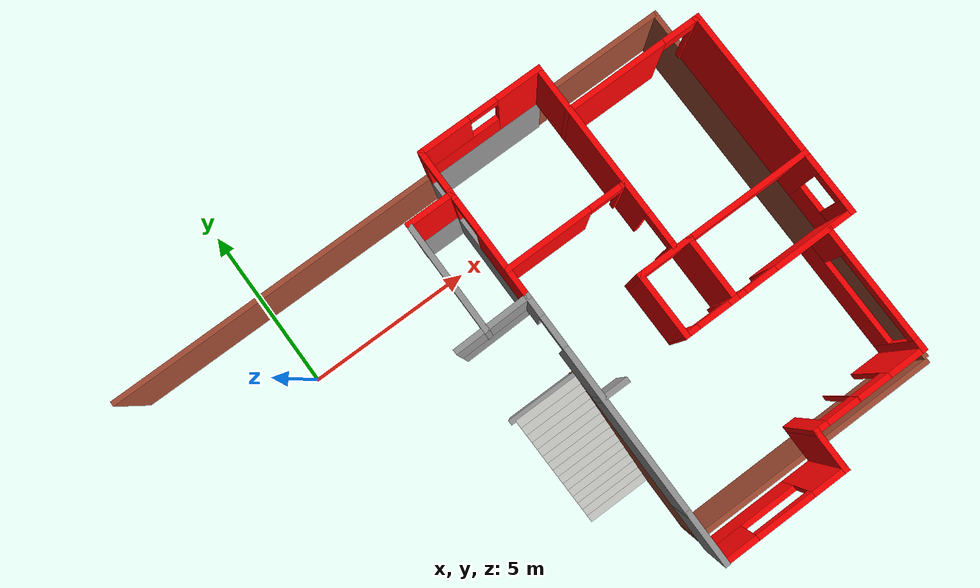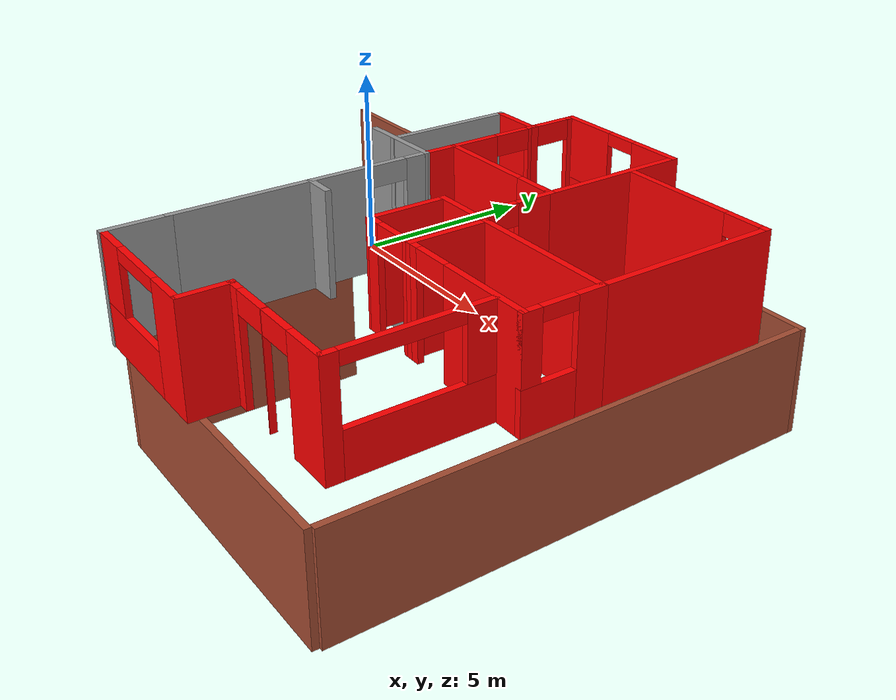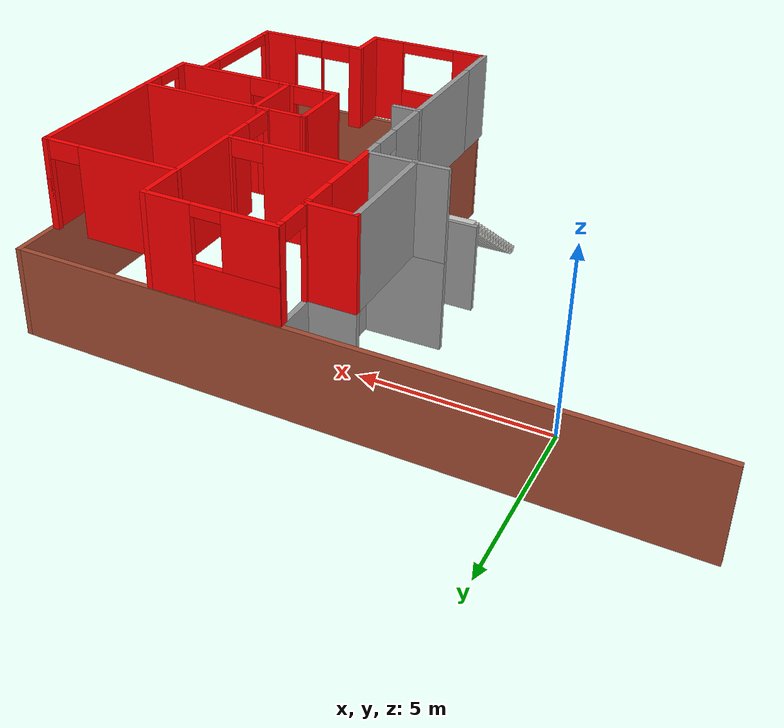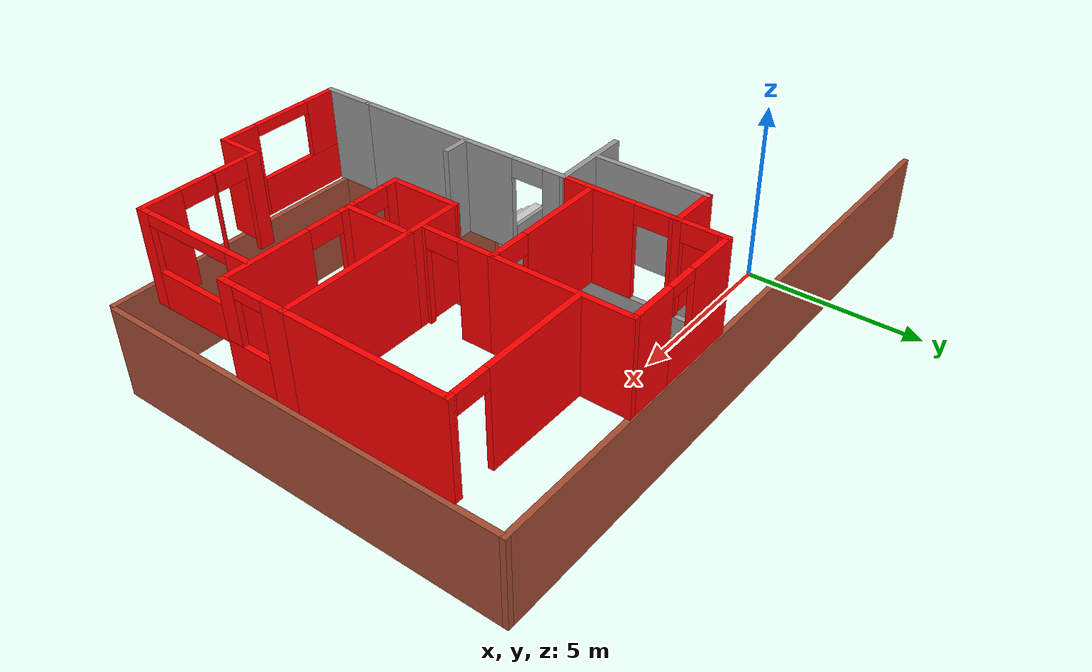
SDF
<sdf version="1.6">
 <model name="2floorHouse">
  <pose>4.58179 -3.588 0 0 -0 0</pose>
  <link name="Stairs_0">
   <visual name="Stairs_0_Visual_0">
    <pose>0.240398 -3.9612 0.083333 0 -0 -3.14159</pose>
    <geometry><box><size>1.92575 0.233333 0.166667</size></box></geometry>
    <material>
     <script><uri>file://media/materials/scripts/gazebo.material</uri><name>Gazebo/CeilingTiled</name></script>
     <ambient>0 0 0 1</ambient>
    </material>
   </visual>
   <collision name="Stairs_0_Collision_0">
    <geometry><box><size>1.92575 0.233333 0.166667</size></box></geometry>
    <pose>0.240398 -3.9612 0.083333 0 -0 -3.14159</pose>
   </collision>
   <visual name="Stairs_0_Visual_1">
    <pose>0.240398 -3.72787 0.25 0 -0 -3.14159</pose>
    <geometry><box><size>1.92575 0.233333 0.166667</size></box></geometry>
    <material>
     <script><uri>file://media/materials/scripts/gazebo.material</uri><name>Gazebo/CeilingTiled</name></script>
     <ambient>0 0 0 1</ambient>
    </material>
   </visual>
   <collision name="Stairs_0_Collision_1">
    <geometry><box><size>1.92575 0.233333 0.166667</size></box></geometry>
    <pose>0.240398 -3.72787 0.25 0 -0 -3.14159</pose>
   </collision>
   <visual name="Stairs_0_Visual_2">
    <pose>0.240398 -3.49454 0.416667 0 -0 -3.14159</pose>
    <geometry><box><size>1.92575 0.233333 0.166667</size></box></geometry>
    <material>
     <script><uri>file://media/materials/scripts/gazebo.material</uri><name>Gazebo/CeilingTiled</name></script>
     <ambient>0 0 0 1</ambient>
    </material>
   </visual>
   <collision name="Stairs_0_Collision_2">
    <geometry><box><size>1.92575 0.233333 0.166667</size></box></geometry>
    <pose>0.240398 -3.49454 0.416667 0 -0 -3.14159</pose>
   </collision>
   <visual name="Stairs_0_Visual_3">
    <pose>0.240398 -3.2612 0.583333 0 -0 -3.14159</pose>
    <geometry><box><size>1.92575 0.233333 0.166667</size></box></geometry>
    <material>
     <script><uri>file://media/materials/scripts/gazebo.material</uri><name>Gazebo/CeilingTiled</name></script>
     <ambient>0 0 0 1</ambient>
    </material>
   </visual>
   <collision name="Stairs_0_Collision_3">
    <geometry><box><size>1.92575 0.233333 0.166667</size></box></geometry>
    <pose>0.240398 -3.2612 0.583333 0 -0 -3.14159</pose>
   </collision>
   <visual name="Stairs_0_Visual_4">
    <pose>0.240398 -3.02787 0.75 0 -0 -3.14159</pose>
    <geometry><box><size>1.92575 0.233333 0.166667</size></box></geometry>
    <material>
     <script><uri>file://media/materials/scripts/gazebo.material</uri><name>Gazebo/CeilingTiled</name></script>
     <ambient>0 0 0 1</ambient>
    </material>
   </visual>
   <collision name="Stairs_0_Collision_4">
    <geometry><box><size>1.92575 0.233333 0.166667</size></box></geometry>
    <pose>0.240398 -3.02787 0.75 0 -0 -3.14159</pose>
   </collision>
   <visual name="Stairs_0_Visual_5">
    <pose>0.240398 -2.79454 0.916667 0 -0 -3.14159</pose>
    <geometry><box><size>1.92575 0.233333 0.166667</size></box></geometry>
    <material>
     <script><uri>file://media/materials/scripts/gazebo.material</uri><name>Gazebo/CeilingTiled</name></script>
     <ambient>0 0 0 1</ambient>
    </material>
   </visual>
   <collision name="Stairs_0_Collision_5">
    <geometry><box><size>1.92575 0.233333 0.166667</size></box></geometry>
    <pose>0.240398 -2.79454 0.916667 0 -0 -3.14159</pose>
   </collision>
   <visual name="Stairs_0_Visual_6">
    <pose>0.240398 -2.5612 1.08333 0 -0 -3.14159</pose>
    <geometry><box><size>1.92575 0.233333 0.166667</size></box></geometry>
    <material>
     <script><uri>file://media/materials/scripts/gazebo.material</uri><name>Gazebo/CeilingTiled</name></script>
     <ambient>0 0 0 1</ambient>
    </material>
   </visual>
   <collision name="Stairs_0_Collision_6">
    <geometry><box><size>1.92575 0.233333 0.166667</size></box></geometry>
    <pose>0.240398 -2.5612 1.08333 0 -0 -3.14159</pose>
   </collision>
   <visual name="Stairs_0_Visual_7">
    <pose>0.240398 -2.32787 1.25 0 -0 -3.14159</pose>
    <geometry><box><size>1.92575 0.233333 0.166667</size></box></geometry>
    <material>
     <script><uri>file://media/materials/scripts/gazebo.material</uri><name>Gazebo/CeilingTiled</name></script>
     <ambient>0 0 0 1</ambient>
    </material>
   </visual>
   <collision name="Stairs_0_Collision_7">
    <geometry><box><size>1.92575 0.233333 0.166667</size></box></geometry>
    <pose>0.240398 -2.32787 1.25 0 -0 -3.14159</pose>
   </collision>
   <visual name="Stairs_0_Visual_8">
    <pose>0.240398 -2.09454 1.41667 0 -0 -3.14159</pose>
    <geometry><box><size>1.92575 0.233333 0.166667</size></box></geometry>
    <material>
     <script><uri>file://media/materials/scripts/gazebo.material</uri><name>Gazebo/CeilingTiled</name></script>
     <ambient>0 0 0 1</ambient>
    </material>
   </visual>
   <collision name="Stairs_0_Collision_8">
    <geometry><box><size>1.92575 0.233333 0.166667</size></box></geometry>
    <pose>0.240398 -2.09454 1.41667 0 -0 -3.14159</pose>
   </collision>
   <visual name="Stairs_0_Visual_9">
    <pose>0.240398 -1.8612 1.58333 0 -0 -3.14159</pose>
    <geometry><box><size>1.92575 0.233333 0.166667</size></box></geometry>
    <material>
     <script><uri>file://media/materials/scripts/gazebo.material</uri><name>Gazebo/CeilingTiled</name></script>
     <ambient>0 0 0 1</ambient>
    </material>
   </visual>
   <collision name="Stairs_0_Collision_9">
    <geometry><box><size>1.92575 0.233333 0.166667</size></box></geometry>
    <pose>0.240398 -1.8612 1.58333 0 -0 -3.14159</pose>
   </collision>
   <visual name="Stairs_0_Visual_10">
    <pose>0.240398 -1.62787 1.75 0 -0 -3.14159</pose>
    <geometry><box><size>1.92575 0.233333 0.166667</size></box></geometry>
    <material>
     <script><uri>file://media/materials/scripts/gazebo.material</uri><name>Gazebo/CeilingTiled</name></script>
     <ambient>0 0 0 1</ambient>
    </material>
   </visual>
   <collision name="Stairs_0_Collision_10">
    <geometry><box><size>1.92575 0.233333 0.166667</size></box></geometry>
    <pose>0.240398 -1.62787 1.75 0 -0 -3.14159</pose>
   </collision>
   <visual name="Stairs_0_Visual_11">
    <pose>0.240398 -1.39454 1.91667 0 -0 -3.14159</pose>
    <geometry><box><size>1.92575 0.233333 0.166667</size></box></geometry>
    <material>
     <script><uri>file://media/materials/scripts/gazebo.material</uri><name>Gazebo/CeilingTiled</name></script>
     <ambient>0 0 0 1</ambient>
    </material>
   </visual>
   <collision name="Stairs_0_Collision_11">
    <geometry><box><size>1.92575 0.233333 0.166667</size></box></geometry>
    <pose>0.240398 -1.39454 1.91667 0 -0 -3.14159</pose>
   </collision>
   <visual name="Stairs_0_Visual_12">
    <pose>0.240398 -1.1612 2.08333 0 -0 -3.14159</pose>
    <geometry><box><size>1.92575 0.233333 0.166667</size></box></geometry>
    <material>
     <script><uri>file://media/materials/scripts/gazebo.material</uri><name>Gazebo/CeilingTiled</name></script>
     <ambient>0 0 0 1</ambient>
    </material>
   </visual>
   <collision name="Stairs_0_Collision_12">
    <geometry><box><size>1.92575 0.233333 0.166667</size></box></geometry>
    <pose>0.240398 -1.1612 2.08333 0 -0 -3.14159</pose>
   </collision>
   <visual name="Stairs_0_Visual_13">
    <pose>0.240398 -0.92787 2.25 0 -0 -3.14159</pose>
    <geometry><box><size>1.92575 0.233333 0.166667</size></box></geometry>
    <material>
     <script><uri>file://media/materials/scripts/gazebo.material</uri><name>Gazebo/CeilingTiled</name></script>
     <ambient>0 0 0 1</ambient>
    </material>
   </visual>
   <collision name="Stairs_0_Collision_13">
    <geometry><box><size>1.92575 0.233333 0.166667</size></box></geometry>
    <pose>0.240398 -0.92787 2.25 0 -0 -3.14159</pose>
   </collision>
   <visual name="Stairs_0_Visual_14">
    <pose>0.240398 -0.694536 2.41667 0 -0 -3.14159</pose>
    <geometry><box><size>1.92575 0.233333 0.166667</size></box></geometry>
    <material>
     <script><uri>file://media/materials/scripts/gazebo.material</uri><name>Gazebo/CeilingTiled</name></script>
     <ambient>0 0 0 1</ambient>
    </material>
   </visual>
   <collision name="Stairs_0_Collision_14">
    <geometry><box><size>1.92575 0.233333 0.166667</size></box></geometry>
    <pose>0.240398 -0.694536 2.41667 0 -0 -3.14159</pose>
   </collision>
  </link>
  <link name="Wall_100">
   <collision name="Wall_100_Collision">
    <geometry><box><size>1.38678 0.15 2.5</size></box></geometry>
    <pose>0 0 1.25 0 -0 0</pose>
   </collision>
   <visual name="Wall_100_Visual">
    <pose>0 0 1.25 0 -0 0</pose>
    <geometry><box><size>1.38678 0.15 2.5</size></box></geometry>
    <material>
     <script><uri>file://media/materials/scripts/gazebo.material</uri><name>Gazebo/Grey</name></script>
     <ambient>1 1 1 1</ambient>
    </material>
   </visual>
   <pose>0.641704 4.61 0 0 -0 3.14159</pose>
  </link>
  <link name="Wall_130">
   <collision name="Wall_130_Collision">
    <geometry><box><size>3.6 0.15 2.5</size></box></geometry>
    <pose>0 0 1.25 0 -0 0</pose>
   </collision>
   <visual name="Wall_130_Visual">
    <pose>0 0 1.25 0 -0 0</pose>
    <geometry><box><size>3.6 0.15 2.5</size></box></geometry>
    <material>
     <script><uri>file://media/materials/scripts/gazebo.material</uri><name>Gazebo/Grey</name></script>
     <ambient>1 1 1 1</ambient>
    </material>
   </visual>
   <pose>2.9912 5.838 0 0 -0 3.14159</pose>
  </link>
  <link name="Wall_133">
   <collision name="Wall_133_Collision">
    <geometry><box><size>1.35 0.15 2.5</size></box></geometry>
    <pose>0 0 1.25 0 -0 0</pose>
   </collision>
   <visual name="Wall_133_Visual">
    <pose>0 0 1.25 0 -0 0</pose>
    <geometry><box><size>1.35 0.15 2.5</size></box></geometry>
    <material>
     <script><uri>file://media/materials/scripts/gazebo.material</uri><name>Gazebo/Grey</name></script>
     <ambient>1 1 1 1</ambient>
    </material>
   </visual>
   <pose>1.26021 5.21 0 0 -0 1.5708</pose>
  </link>
  <link name="Wall_312">
   <collision name="Wall_312_Collision">
    <geometry><box><size>2.20039 0.15 2.5</size></box></geometry>
    <pose>0 0 1.25 0 -0 0</pose>
   </collision>
   <visual name="Wall_312_Visual">
    <pose>0 0 1.25 0 -0 0</pose>
    <geometry><box><size>2.20039 0.15 2.5</size></box></geometry>
    <material>
     <script><uri>file://media/materials/scripts/gazebo.material</uri><name>Gazebo/Grey</name></script>
     <ambient>1 1 1 1</ambient>
    </material>
   </visual>
   <pose>0.235204 1.58011 2.5 0 -0 0.01962</pose>
  </link>
  <link name="Wall_313">
   <pose>1.26021 3.10511 2.5 0 -0 1.5708</pose>
   <visual name="Wall_313_Visual_0">
    <pose>-0.572109 0 1.25 0 -0 0</pose>
    <geometry><box><size>2.01555 0.15 2.5</size></box></geometry>
    <material>
     <script><uri>file://media/materials/scripts/gazebo.material</uri><name>Gazebo/Grey</name></script>
     <ambient>1 0 0 1</ambient>
    </material>
   </visual>
   <collision name="Wall_313_Collision_0">
    <geometry><box><size>2.01555 0.15 2.5</size></box></geometry>
    <pose>-0.572109 0 1.25 0 -0 0</pose>
   </collision>
   <visual name="Wall_313_Visual_1">
    <pose>1.45778 0 1.25 0 -0 0</pose>
    <geometry><box><size>0.244218 0.15 2.5</size></box></geometry>
    <material>
     <script><uri>file://media/materials/scripts/gazebo.material</uri><name>Gazebo/Grey</name></script>
     <ambient>1 0 0 1</ambient>
    </material>
   </visual>
   <collision name="Wall_313_Collision_1">
    <geometry><box><size>0.244218 0.15 2.5</size></box></geometry>
    <pose>1.45778 0 1.25 0 -0 0</pose>
   </collision>
   <visual name="Wall_313_Visual_2">
    <pose>0.885669 0 2.25 0 -0 0</pose>
    <geometry><box><size>0.9 0.15 0.5</size></box></geometry>
    <material>
     <script><uri>file://media/materials/scripts/gazebo.material</uri><name>Gazebo/Grey</name></script>
     <ambient>1 0 0 1</ambient>
    </material>
   </visual>
   <collision name="Wall_313_Collision_2">
    <geometry><box><size>0.9 0.15 0.5</size></box></geometry>
    <pose>0.885669 0 2.25 0 -0 0</pose>
   </collision>
  </link>
  <link name="Wall_314">
   <collision name="Wall_314_Collision">
    <geometry><box><size>1.387 0.15 2.5</size></box></geometry>
    <pose>0 0 1.25 0 -0 0</pose>
   </collision>
   <visual name="Wall_314_Visual">
    <pose>0 0 1.25 0 -0 0</pose>
    <geometry><box><size>1.387 0.15 2.5</size></box></geometry>
    <material>
     <script><uri>file://media/materials/scripts/gazebo.material</uri><name>Gazebo/Grey</name></script>
     <ambient>1 0 0 1</ambient>
    </material>
   </visual>
   <pose>0.641704 4.61 2.5 0 -0 3.14159</pose>
  </link>
  <link name="Wall_315">
   <collision name="Wall_315_Collision">
    <geometry><box><size>3.2 0.15 2.5</size></box></geometry>
    <pose>0 0 1.25 0 -0 0</pose>
   </collision>
   <visual name="Wall_315_Visual">
    <pose>0 0 1.25 0 -0 0</pose>
    <geometry><box><size>3.2 0.15 2.5</size></box></geometry>
    <material>
     <script><uri>file://media/materials/scripts/gazebo.material</uri><name>Gazebo/Grey</name></script>
     <ambient>1 1 1 1</ambient>
    </material>
   </visual>
   <pose>0.023205 3.085 2.5 0 0 -1.5708</pose>
  </link>
  <link name="Wall_322">
   <pose>2.9912 2.388 2.5 0 -0 0</pose>
   <visual name="Wall_322_Visual_0">
    <pose>-0.562525 0 1.25 0 -0 0</pose>
    <geometry><box><size>2.47495 0.15 2.5</size></box></geometry>
    <material>
     <script><uri>file://media/materials/scripts/gazebo.material</uri><name>Gazebo/Grey</name></script>
     <ambient>1 0 0 1</ambient>
    </material>
   </visual>
   <collision name="Wall_322_Collision_0">
    <geometry><box><size>2.47495 0.15 2.5</size></box></geometry>
    <pose>-0.562525 0 1.25 0 -0 0</pose>
   </collision>
   <visual name="Wall_322_Visual_1">
    <pose>1.68748 0 1.25 0 -0 0</pose>
    <geometry><box><size>0.225051 0.15 2.5</size></box></geometry>
    <material>
     <script><uri>file://media/materials/scripts/gazebo.material</uri><name>Gazebo/Grey</name></script>
     <ambient>1 0 0 1</ambient>
    </material>
   </visual>
   <collision name="Wall_322_Collision_1">
    <geometry><box><size>0.225051 0.15 2.5</size></box></geometry>
    <pose>1.68748 0 1.25 0 -0 0</pose>
   </collision>
   <visual name="Wall_322_Visual_2">
    <pose>1.12495 0 2.25 0 -0 0</pose>
    <geometry><box><size>0.9 0.15 0.5</size></box></geometry>
    <material>
     <script><uri>file://media/materials/scripts/gazebo.material</uri><name>Gazebo/Grey</name></script>
     <ambient>1 0 0 1</ambient>
    </material>
   </visual>
   <collision name="Wall_322_Collision_2">
    <geometry><box><size>0.9 0.15 0.5</size></box></geometry>
    <pose>1.12495 0 2.25 0 -0 0</pose>
   </collision>
  </link>
  <link name="Wall_323">
   <collision name="Wall_323_Collision">
    <geometry><box><size>3.6 0.15 2.5</size></box></geometry>
    <pose>0 0 1.25 0 -0 0</pose>
   </collision>
   <visual name="Wall_323_Visual">
    <pose>0 0 1.25 0 -0 0</pose>
    <geometry><box><size>3.6 0.15 2.5</size></box></geometry>
    <material>
     <script><uri>file://media/materials/scripts/gazebo.material</uri><name>Gazebo/Grey</name></script>
     <ambient>1 0 0 1</ambient>
    </material>
   </visual>
   <pose>4.71621 4.113 2.5 0 -0 1.5708</pose>
  </link>
  <link name="Wall_324">
   <pose>2.9912 5.838 2.5 0 -0 3.14159</pose>
   <visual name="Wall_324_Visual_0">
    <pose>-1.13431 0 1.25 0 -0 0</pose>
    <geometry><box><size>1.33138 0.15 2.5</size></box></geometry>
    <material>
     <script><uri>file://media/materials/scripts/gazebo.material</uri><name>Gazebo/Grey</name></script>
     <ambient>1 0 0 1</ambient>
    </material>
   </visual>
   <collision name="Wall_324_Collision_0">
    <geometry><box><size>1.33138 0.15 2.5</size></box></geometry>
    <pose>-1.13431 0 1.25 0 -0 0</pose>
   </collision>
   <visual name="Wall_324_Visual_1">
    <pose>0.665691 0 0.5 0 -0 0</pose>
    <geometry><box><size>2.26862 0.15 1</size></box></geometry>
    <material>
     <script><uri>file://media/materials/scripts/gazebo.material</uri><name>Gazebo/Grey</name></script>
     <ambient>1 0 0 1</ambient>
    </material>
   </visual>
   <collision name="Wall_324_Collision_1">
    <geometry><box><size>2.26862 0.15 1</size></box></geometry>
    <pose>0.665691 0 0.5 0 -0 0</pose>
   </collision>
   <visual name="Wall_324_Visual_2">
    <pose>1.06569 0 1.75 0 -0 0</pose>
    <geometry><box><size>1.46862 0.15 1.5</size></box></geometry>
    <material>
     <script><uri>file://media/materials/scripts/gazebo.material</uri><name>Gazebo/Grey</name></script>
     <ambient>1 0 0 1</ambient>
    </material>
   </visual>
   <collision name="Wall_324_Collision_2">
    <geometry><box><size>1.46862 0.15 1.5</size></box></geometry>
    <pose>1.06569 0 1.75 0 -0 0</pose>
   </collision>
   <visual name="Wall_324_Visual_3">
    <pose>-0.068619 0 2.35 0 -0 0</pose>
    <geometry><box><size>0.8 0.15 0.3</size></box></geometry>
    <material>
     <script><uri>file://media/materials/scripts/gazebo.material</uri><name>Gazebo/Grey</name></script>
     <ambient>1 0 0 1</ambient>
    </material>
   </visual>
   <collision name="Wall_324_Collision_3">
    <geometry><box><size>0.8 0.15 0.3</size></box></geometry>
    <pose>-0.068619 0 2.35 0 -0 0</pose>
   </collision>
  </link>
  <link name="Wall_325">
   <pose>1.26021 5.21 2.5 0 -0 1.5708</pose>
   <visual name="Wall_325_Visual_0">
    <pose>-0.574505 0 1.25 0 -0 0</pose>
    <geometry><box><size>0.20099 0.15 2.5</size></box></geometry>
    <material>
     <script><uri>file://media/materials/scripts/gazebo.material</uri><name>Gazebo/Grey</name></script>
     <ambient>1 0 0 1</ambient>
    </material>
   </visual>
   <collision name="Wall_325_Collision_0">
    <geometry><box><size>0.20099 0.15 2.5</size></box></geometry>
    <pose>-0.574505 0 1.25 0 -0 0</pose>
   </collision>
   <visual name="Wall_325_Visual_1">
    <pose>0.550495 0 1.25 0 -0 0</pose>
    <geometry><box><size>0.24901 0.15 2.5</size></box></geometry>
    <material>
     <script><uri>file://media/materials/scripts/gazebo.material</uri><name>Gazebo/Grey</name></script>
     <ambient>1 0 0 1</ambient>
    </material>
   </visual>
   <collision name="Wall_325_Collision_1">
    <geometry><box><size>0.24901 0.15 2.5</size></box></geometry>
    <pose>0.550495 0 1.25 0 -0 0</pose>
   </collision>
   <visual name="Wall_325_Visual_2">
    <pose>-0.02401 0 2.25 0 -0 0</pose>
    <geometry><box><size>0.9 0.15 0.5</size></box></geometry>
    <material>
     <script><uri>file://media/materials/scripts/gazebo.material</uri><name>Gazebo/Grey</name></script>
     <ambient>1 0 0 1</ambient>
    </material>
   </visual>
   <collision name="Wall_325_Collision_2">
    <geometry><box><size>0.9 0.15 0.5</size></box></geometry>
    <pose>-0.02401 0 2.25 0 -0 0</pose>
   </collision>
  </link>
  <link name="Wall_326">
   <pose>6.6372 4.588 2.5 0 -0 0</pose>
   <visual name="Wall_326_Visual_0">
    <pose>-0.551177 0 1.25 0 -0 0</pose>
    <geometry><box><size>2.89765 0.15 2.5</size></box></geometry>
    <material>
     <script><uri>file://media/materials/scripts/gazebo.material</uri><name>Gazebo/Grey</name></script>
     <ambient>1 0 0 1</ambient>
    </material>
   </visual>
   <collision name="Wall_326_Collision_0">
    <geometry><box><size>2.89765 0.15 2.5</size></box></geometry>
    <pose>-0.551177 0 1.25 0 -0 0</pose>
   </collision>
   <visual name="Wall_326_Visual_1">
    <pose>1.89882 0 1.25 0 -0 0</pose>
    <geometry><box><size>0.202354 0.15 2.5</size></box></geometry>
    <material>
     <script><uri>file://media/materials/scripts/gazebo.material</uri><name>Gazebo/Grey</name></script>
     <ambient>1 0 0 1</ambient>
    </material>
   </visual>
   <collision name="Wall_326_Collision_1">
    <geometry><box><size>0.202354 0.15 2.5</size></box></geometry>
    <pose>1.89882 0 1.25 0 -0 0</pose>
   </collision>
   <visual name="Wall_326_Visual_2">
    <pose>1.34765 0 2.25 0 -0 0</pose>
    <geometry><box><size>0.9 0.15 0.5</size></box></geometry>
    <material>
     <script><uri>file://media/materials/scripts/gazebo.material</uri><name>Gazebo/Grey</name></script>
     <ambient>1 0 0 1</ambient>
    </material>
   </visual>
   <collision name="Wall_326_Collision_2">
    <geometry><box><size>0.9 0.15 0.5</size></box></geometry>
    <pose>1.34765 0 2.25 0 -0 0</pose>
   </collision>
  </link>
  <link name="Wall_327">
   <collision name="Wall_327_Collision">
    <geometry><box><size>4.3 0.15 2.5</size></box></geometry>
    <pose>0 0 1.25 0 -0 0</pose>
   </collision>
   <visual name="Wall_327_Visual">
    <pose>0 0 1.25 0 -0 0</pose>
    <geometry><box><size>4.3 0.15 2.5</size></box></geometry>
    <material>
     <script><uri>file://media/materials/scripts/gazebo.material</uri><name>Gazebo/Grey</name></script>
     <ambient>1 0 0 1</ambient>
    </material>
   </visual>
   <pose>8.56221 2.513 2.5 0 0 -1.5708</pose>
  </link>
  <link name="Wall_328">
   <collision name="Wall_328_Collision">
    <geometry><box><size>3.6 0.15 2.5</size></box></geometry>
    <pose>0 0 1.25 0 -0 0</pose>
   </collision>
   <visual name="Wall_328_Visual">
    <pose>0 0 1.25 0 -0 0</pose>
    <geometry><box><size>3.6 0.15 2.5</size></box></geometry>
    <material>
     <script><uri>file://media/materials/scripts/gazebo.material</uri><name>Gazebo/Grey</name></script>
     <ambient>1 0 0 1</ambient>
    </material>
   </visual>
   <pose>6.8372 0.437996 2.5 0 -0 3.14159</pose>
  </link>
  <link name="Wall_329">
   <collision name="Wall_329_Collision">
    <geometry><box><size>1.6 0.15 2.5</size></box></geometry>
    <pose>0 0 1.25 0 -0 0</pose>
   </collision>
   <visual name="Wall_329_Visual">
    <pose>0 0 1.25 0 -0 0</pose>
    <geometry><box><size>1.6 0.15 2.5</size></box></geometry>
    <material>
     <script><uri>file://media/materials/scripts/gazebo.material</uri><name>Gazebo/Grey</name></script>
     <ambient>1 0 0 1</ambient>
    </material>
   </visual>
   <pose>4.3872 0.437996 2.5 0 -0 3.14159</pose>
  </link>
  <link name="Wall_330">
   <pose>4.71621 1.463 2.5 0 0 -1.5708</pose>
   <visual name="Wall_330_Visual_0">
    <pose>-0.517454 0 1.25 0 -0 0</pose>
    <geometry><box><size>0.965091 0.15 2.5</size></box></geometry>
    <material>
     <script><uri>file://media/materials/scripts/gazebo.material</uri><name>Gazebo/Grey</name></script>
     <ambient>1 0 0 1</ambient>
    </material>
   </visual>
   <collision name="Wall_330_Collision_0">
    <geometry><box><size>0.965091 0.15 2.5</size></box></geometry>
    <pose>-0.517454 0 1.25 0 -0 0</pose>
   </collision>
   <visual name="Wall_330_Visual_1">
    <pose>0.932546 0 1.25 0 -0 0</pose>
    <geometry><box><size>0.134909 0.15 2.5</size></box></geometry>
    <material>
     <script><uri>file://media/materials/scripts/gazebo.material</uri><name>Gazebo/Grey</name></script>
     <ambient>1 0 0 1</ambient>
    </material>
   </visual>
   <collision name="Wall_330_Collision_1">
    <geometry><box><size>0.134909 0.15 2.5</size></box></geometry>
    <pose>0.932546 0 1.25 0 -0 0</pose>
   </collision>
   <visual name="Wall_330_Visual_2">
    <pose>0.415091 0 2.25 0 -0 0</pose>
    <geometry><box><size>0.9 0.15 0.5</size></box></geometry>
    <material>
     <script><uri>file://media/materials/scripts/gazebo.material</uri><name>Gazebo/Grey</name></script>
     <ambient>1 0 0 1</ambient>
    </material>
   </visual>
   <collision name="Wall_330_Collision_2">
    <geometry><box><size>0.9 0.15 0.5</size></box></geometry>
    <pose>0.415091 0 2.25 0 -0 0</pose>
   </collision>
  </link>
  <link name="Wall_331">
   <pose>8.56221 -0.437004 2.5 0 0 -1.5708</pose>
   <visual name="Wall_331_Visual_0">
    <pose>-0.622308 0 1.25 0 -0 0</pose>
    <geometry><box><size>0.655384 0.15 2.5</size></box></geometry>
    <material>
     <script><uri>file://media/materials/scripts/gazebo.material</uri><name>Gazebo/Grey</name></script>
     <ambient>1 0 0 1</ambient>
    </material>
   </visual>
   <collision name="Wall_331_Collision_0">
    <geometry><box><size>0.655384 0.15 2.5</size></box></geometry>
    <pose>-0.622308 0 1.25 0 -0 0</pose>
   </collision>
   <visual name="Wall_331_Visual_1">
    <pose>0.327692 0 0.5 0 -0 0</pose>
    <geometry><box><size>1.24462 0.15 1</size></box></geometry>
    <material>
     <script><uri>file://media/materials/scripts/gazebo.material</uri><name>Gazebo/Grey</name></script>
     <ambient>1 0 0 1</ambient>
    </material>
   </visual>
   <collision name="Wall_331_Collision_1">
    <geometry><box><size>1.24462 0.15 1</size></box></geometry>
    <pose>0.327692 0 0.5 0 -0 0</pose>
   </collision>
   <visual name="Wall_331_Visual_2">
    <pose>0.727692 0 1.75 0 -0 0</pose>
    <geometry><box><size>0.444616 0.15 1.5</size></box></geometry>
    <material>
     <script><uri>file://media/materials/scripts/gazebo.material</uri><name>Gazebo/Grey</name></script>
     <ambient>1 0 0 1</ambient>
    </material>
   </visual>
   <collision name="Wall_331_Collision_2">
    <geometry><box><size>0.444616 0.15 1.5</size></box></geometry>
    <pose>0.727692 0 1.75 0 -0 0</pose>
   </collision>
   <visual name="Wall_331_Visual_3">
    <pose>0.105384 0 2.35 0 -0 0</pose>
    <geometry><box><size>0.8 0.15 0.3</size></box></geometry>
    <material>
     <script><uri>file://media/materials/scripts/gazebo.material</uri><name>Gazebo/Grey</name></script>
     <ambient>1 0 0 1</ambient>
    </material>
   </visual>
   <collision name="Wall_331_Collision_3">
    <geometry><box><size>0.8 0.15 0.3</size></box></geometry>
    <pose>0.105384 0 2.35 0 -0 0</pose>
   </collision>
  </link>
  <link name="Wall_332">
   <pose>6.8372 -1.312 2.5 0 -0 3.14159</pose>
   <visual name="Wall_332_Visual_0">
    <pose>-0.629591 0 1.25 0 -0 0</pose>
    <geometry><box><size>2.34082 0.15 2.5</size></box></geometry>
    <material>
     <script><uri>file://media/materials/scripts/gazebo.material</uri><name>Gazebo/Grey</name></script>
     <ambient>1 0 0 1</ambient>
    </material>
   </visual>
   <collision name="Wall_332_Collision_0">
    <geometry><box><size>2.34082 0.15 2.5</size></box></geometry>
    <pose>-0.629591 0 1.25 0 -0 0</pose>
   </collision>
   <visual name="Wall_332_Visual_1">
    <pose>1.62041 0 1.25 0 -0 0</pose>
    <geometry><box><size>0.359182 0.15 2.5</size></box></geometry>
    <material>
     <script><uri>file://media/materials/scripts/gazebo.material</uri><name>Gazebo/Grey</name></script>
     <ambient>1 0 0 1</ambient>
    </material>
   </visual>
   <collision name="Wall_332_Collision_1">
    <geometry><box><size>0.359182 0.15 2.5</size></box></geometry>
    <pose>1.62041 0 1.25 0 -0 0</pose>
   </collision>
   <visual name="Wall_332_Visual_2">
    <pose>0.990818 0 2.25 0 -0 0</pose>
    <geometry><box><size>0.9 0.15 0.5</size></box></geometry>
    <material>
     <script><uri>file://media/materials/scripts/gazebo.material</uri><name>Gazebo/Grey</name></script>
     <ambient>1 0 0 1</ambient>
    </material>
   </visual>
   <collision name="Wall_332_Collision_2">
    <geometry><box><size>0.9 0.15 0.5</size></box></geometry>
    <pose>0.990818 0 2.25 0 -0 0</pose>
   </collision>
  </link>
  <link name="Wall_333">
   <collision name="Wall_333_Collision">
    <geometry><box><size>1.9 0.15 2.5</size></box></geometry>
    <pose>0 0 1.25 0 -0 0</pose>
   </collision>
   <visual name="Wall_333_Visual">
    <pose>0 0 1.25 0 -0 0</pose>
    <geometry><box><size>1.9 0.15 2.5</size></box></geometry>
    <material>
     <script><uri>file://media/materials/scripts/gazebo.material</uri><name>Gazebo/Grey</name></script>
     <ambient>1 0 0 1</ambient>
    </material>
   </visual>
   <pose>5.11221 -0.437004 2.5 0 -0 1.5708</pose>
  </link>
  <link name="Wall_334">
   <pose>4.3902 -1.312 2.5 0 0 -3.14159</pose>
   <visual name="Wall_334_Visual_0">
    <pose>-0.663847 0 1.25 0 -0 0</pose>
    <geometry><box><size>0.266307 0.15 2.5</size></box></geometry>
    <material>
     <script><uri>file://media/materials/scripts/gazebo.material</uri><name>Gazebo/Grey</name></script>
     <ambient>1 0 0 1</ambient>
    </material>
   </visual>
   <collision name="Wall_334_Collision_0">
    <geometry><box><size>0.266307 0.15 2.5</size></box></geometry>
    <pose>-0.663847 0 1.25 0 -0 0</pose>
   </collision>
   <visual name="Wall_334_Visual_1">
    <pose>0.583153 0 1.25 0 -0 0</pose>
    <geometry><box><size>0.427693 0.15 2.5</size></box></geometry>
    <material>
     <script><uri>file://media/materials/scripts/gazebo.material</uri><name>Gazebo/Grey</name></script>
     <ambient>1 0 0 1</ambient>
    </material>
   </visual>
   <collision name="Wall_334_Collision_1">
    <geometry><box><size>0.427693 0.15 2.5</size></box></geometry>
    <pose>0.583153 0 1.25 0 -0 0</pose>
   </collision>
   <visual name="Wall_334_Visual_2">
    <pose>-0.080693 0 2.25 0 -0 0</pose>
    <geometry><box><size>0.9 0.15 0.5</size></box></geometry>
    <material>
     <script><uri>file://media/materials/scripts/gazebo.material</uri><name>Gazebo/Grey</name></script>
     <ambient>1 0 0 1</ambient>
    </material>
   </visual>
   <collision name="Wall_334_Collision_2">
    <geometry><box><size>0.9 0.15 0.5</size></box></geometry>
    <pose>-0.080693 0 2.25 0 -0 0</pose>
   </collision>
  </link>
  <link name="Wall_335">
   <collision name="Wall_335_Collision">
    <geometry><box><size>1.90001 0.15 2.5</size></box></geometry>
    <pose>0 0 1.25 0 -0 0</pose>
   </collision>
   <visual name="Wall_335_Visual">
    <pose>0 0 1.25 0 -0 0</pose>
    <geometry><box><size>1.90001 0.15 2.5</size></box></geometry>
    <material>
     <script><uri>file://media/materials/scripts/gazebo.material</uri><name>Gazebo/Grey</name></script>
     <ambient>1 0 0 1</ambient>
    </material>
   </visual>
   <pose>3.6652 -0.437004 2.5 0 -0 1.57422</pose>
  </link>
  <link name="Wall_336">
   <pose>1.26021 -1.46995 2.5 0 0 -1.5708</pose>
   <visual name="Wall_336_Visual_0">
    <pose>-2.8165 0 1.25 0 -0 0</pose>
    <geometry><box><size>0.617113 0.15 2.5</size></box></geometry>
    <material>
     <script><uri>file://media/materials/scripts/gazebo.material</uri><name>Gazebo/Grey</name></script>
     <ambient>1 1 1 1</ambient>
    </material>
   </visual>
   <collision name="Wall_336_Collision_0">
    <geometry><box><size>0.617113 0.15 2.5</size></box></geometry>
    <pose>-2.8165 0 1.25 0 -0 0</pose>
   </collision>
   <visual name="Wall_336_Visual_1">
    <pose>0.758557 0 1.25 0 -0 0</pose>
    <geometry><box><size>4.733 0.15 2.5</size></box></geometry>
    <material>
     <script><uri>file://media/materials/scripts/gazebo.material</uri><name>Gazebo/Grey</name></script>
     <ambient>1 1 1 1</ambient>
    </material>
   </visual>
   <collision name="Wall_336_Collision_1">
    <geometry><box><size>4.733 0.15 2.5</size></box></geometry>
    <pose>0.758557 0 1.25 0 -0 0</pose>
   </collision>
   <visual name="Wall_336_Visual_2">
    <pose>-2.05794 0 2.25 0 -0 0</pose>
    <geometry><box><size>0.9 0.15 0.5</size></box></geometry>
    <material>
     <script><uri>file://media/materials/scripts/gazebo.material</uri><name>Gazebo/Grey</name></script>
     <ambient>1 1 1 1</ambient>
    </material>
   </visual>
   <collision name="Wall_336_Collision_2">
    <geometry><box><size>0.9 0.15 0.5</size></box></geometry>
    <pose>-2.05794 0 2.25 0 -0 0</pose>
   </collision>
  </link>
  <link name="Wall_337">
   <collision name="Wall_337_Collision">
    <geometry><box><size>0.8 0.15 2.5</size></box></geometry>
    <pose>0 0 1.25 0 -0 0</pose>
   </collision>
   <visual name="Wall_337_Visual">
    <pose>0 0 1.25 0 -0 0</pose>
    <geometry><box><size>0.8 0.15 2.5</size></box></geometry>
    <material>
     <script><uri>file://media/materials/scripts/gazebo.material</uri><name>Gazebo/Grey</name></script>
     <ambient>1 1 1 1</ambient>
    </material>
   </visual>
   <pose>1.5832 -1.312 2.5 0 -0 0</pose>
  </link>
  <link name="Wall_338">
   <pose>7.8602 -3.07643 2.5 0 -0 1.5708</pose>
   <visual name="Wall_338_Visual_0">
    <pose>-1.61551 0 1.25 0 -0 0</pose>
    <geometry><box><size>0.368981 0.15 2.5</size></box></geometry>
    <material>
     <script><uri>file://media/materials/scripts/gazebo.material</uri><name>Gazebo/Grey</name></script>
     <ambient>1 0 0 1</ambient>
    </material>
   </visual>
   <collision name="Wall_338_Collision_0">
    <geometry><box><size>0.368981 0.15 2.5</size></box></geometry>
    <pose>-1.61551 0 1.25 0 -0 0</pose>
   </collision>
   <visual name="Wall_338_Visual_1">
    <pose>0.18449 0 0.5 0 -0 0</pose>
    <geometry><box><size>3.23102 0.15 1</size></box></geometry>
    <material>
     <script><uri>file://media/materials/scripts/gazebo.material</uri><name>Gazebo/Grey</name></script>
     <ambient>1 0 0 1</ambient>
    </material>
   </visual>
   <collision name="Wall_338_Collision_1">
    <geometry><box><size>3.23102 0.15 1</size></box></geometry>
    <pose>0.18449 0 0.5 0 -0 0</pose>
   </collision>
   <visual name="Wall_338_Visual_2">
    <pose>1.43449 0 1.75 0 -0 0</pose>
    <geometry><box><size>0.731019 0.15 1.5</size></box></geometry>
    <material>
     <script><uri>file://media/materials/scripts/gazebo.material</uri><name>Gazebo/Grey</name></script>
     <ambient>1 0 0 1</ambient>
    </material>
   </visual>
   <collision name="Wall_338_Collision_2">
    <geometry><box><size>0.731019 0.15 1.5</size></box></geometry>
    <pose>1.43449 0 1.75 0 -0 0</pose>
   </collision>
   <visual name="Wall_338_Visual_3">
    <pose>-0.181019 0 2.35 0 -0 0</pose>
    <geometry><box><size>2.5 0.15 0.3</size></box></geometry>
    <material>
     <script><uri>file://media/materials/scripts/gazebo.material</uri><name>Gazebo/Grey</name></script>
     <ambient>1 0 0 1</ambient>
    </material>
   </visual>
   <collision name="Wall_338_Collision_3">
    <geometry><box><size>2.5 0.15 0.3</size></box></geometry>
    <pose>-0.181019 0 2.35 0 -0 0</pose>
   </collision>
  </link>
  <link name="Wall_339">
   <pose>6.2852 -4.80143 2.5 0 -0 3.14159</pose>
   <visual name="Wall_339_Visual_0">
    <pose>-1.11026 0 1.25 0 -0 0</pose>
    <geometry><box><size>1.07948 0.15 2.5</size></box></geometry>
    <material>
     <script><uri>file://media/materials/scripts/gazebo.material</uri><name>Gazebo/Grey</name></script>
     <ambient>1 0 0 1</ambient>
    </material>
   </visual>
   <collision name="Wall_339_Collision_0">
    <geometry><box><size>1.07948 0.15 2.5</size></box></geometry>
    <pose>-1.11026 0 1.25 0 -0 0</pose>
   </collision>
   <visual name="Wall_339_Visual_1">
    <pose>0.341197 0 1.25 0 -0 0</pose>
    <geometry><box><size>0.023442 0.15 2.5</size></box></geometry>
    <material>
     <script><uri>file://media/materials/scripts/gazebo.material</uri><name>Gazebo/Grey</name></script>
     <ambient>1 0 0 1</ambient>
    </material>
   </visual>
   <collision name="Wall_339_Collision_1">
    <geometry><box><size>0.023442 0.15 2.5</size></box></geometry>
    <pose>0.341197 0 1.25 0 -0 0</pose>
   </collision>
   <visual name="Wall_339_Visual_2">
    <pose>1.45146 0 1.25 0 -0 0</pose>
    <geometry><box><size>0.397083 0.15 2.5</size></box></geometry>
    <material>
     <script><uri>file://media/materials/scripts/gazebo.material</uri><name>Gazebo/Grey</name></script>
     <ambient>1 0 0 1</ambient>
    </material>
   </visual>
   <collision name="Wall_339_Collision_2">
    <geometry><box><size>0.397083 0.15 2.5</size></box></geometry>
    <pose>1.45146 0 1.25 0 -0 0</pose>
   </collision>
   <visual name="Wall_339_Visual_3">
    <pose>-0.120524 0 2.25 0 -0 0</pose>
    <geometry><box><size>0.9 0.15 0.5</size></box></geometry>
    <material>
     <script><uri>file://media/materials/scripts/gazebo.material</uri><name>Gazebo/Grey</name></script>
     <ambient>1 0 0 1</ambient>
    </material>
   </visual>
   <collision name="Wall_339_Collision_3">
    <geometry><box><size>0.9 0.15 0.5</size></box></geometry>
    <pose>-0.120524 0 2.25 0 -0 0</pose>
   </collision>
   <visual name="Wall_339_Visual_4">
    <pose>0.802917 0 2.25 0 -0 0</pose>
    <geometry><box><size>0.9 0.15 0.5</size></box></geometry>
    <material>
     <script><uri>file://media/materials/scripts/gazebo.material</uri><name>Gazebo/Grey</name></script>
     <ambient>1 0 0 1</ambient>
    </material>
   </visual>
   <collision name="Wall_339_Collision_4">
    <geometry><box><size>0.9 0.15 0.5</size></box></geometry>
    <pose>0.802917 0 2.25 0 -0 0</pose>
   </collision>
  </link>
  <link name="Wall_340">
   <collision name="Wall_340_Collision">
    <geometry><box><size>1.2 0.15 2.5</size></box></geometry>
    <pose>0 0 1.25 0 -0 0</pose>
   </collision>
   <visual name="Wall_340_Visual">
    <pose>0 0 1.25 0 -0 0</pose>
    <geometry><box><size>1.2 0.15 2.5</size></box></geometry>
    <material>
     <script><uri>file://media/materials/scripts/gazebo.material</uri><name>Gazebo/Grey</name></script>
     <ambient>1 0 0 1</ambient>
    </material>
   </visual>
   <pose>4.7102 -5.32643 2.5 0 0 -1.5708</pose>
  </link>
  <link name="Wall_341">
   <pose>3.0352 -5.85143 2.5 0 -0 3.14159</pose>
   <visual name="Wall_341_Visual_0">
    <pose>-1.24427 0 1.25 0 -0 0</pose>
    <geometry><box><size>1.01145 0.15 2.5</size></box></geometry>
    <material>
     <script><uri>file://media/materials/scripts/gazebo.material</uri><name>Gazebo/Grey</name></script>
     <ambient>1 0 0 1</ambient>
    </material>
   </visual>
   <collision name="Wall_341_Collision_0">
    <geometry><box><size>1.01145 0.15 2.5</size></box></geometry>
    <pose>-1.24427 0 1.25 0 -0 0</pose>
   </collision>
   <visual name="Wall_341_Visual_1">
    <pose>0.505727 0 0.5 0 -0 0</pose>
    <geometry><box><size>2.48855 0.15 1</size></box></geometry>
    <material>
     <script><uri>file://media/materials/scripts/gazebo.material</uri><name>Gazebo/Grey</name></script>
     <ambient>1 0 0 1</ambient>
    </material>
   </visual>
   <collision name="Wall_341_Collision_1">
    <geometry><box><size>2.48855 0.15 1</size></box></geometry>
    <pose>0.505727 0 0.5 0 -0 0</pose>
   </collision>
   <visual name="Wall_341_Visual_2">
    <pose>1.30573 0 1.75 0 -0 0</pose>
    <geometry><box><size>0.888547 0.15 1.5</size></box></geometry>
    <material>
     <script><uri>file://media/materials/scripts/gazebo.material</uri><name>Gazebo/Grey</name></script>
     <ambient>1 0 0 1</ambient>
    </material>
   </visual>
   <collision name="Wall_341_Collision_2">
    <geometry><box><size>0.888547 0.15 1.5</size></box></geometry>
    <pose>1.30573 0 1.75 0 -0 0</pose>
   </collision>
   <visual name="Wall_341_Visual_3">
    <pose>0.061453 0 2.35 0 -0 0</pose>
    <geometry><box><size>1.6 0.15 0.3</size></box></geometry>
    <material>
     <script><uri>file://media/materials/scripts/gazebo.material</uri><name>Gazebo/Grey</name></script>
     <ambient>1 0 0 1</ambient>
    </material>
   </visual>
   <collision name="Wall_341_Collision_3">
    <geometry><box><size>1.6 0.15 0.3</size></box></geometry>
    <pose>0.061453 0 2.35 0 -0 0</pose>
   </collision>
  </link>
  <link name="Wall_342">
   <collision name="Wall_342_Collision">
    <geometry><box><size>1.5 0.15 2.5</size></box></geometry>
    <pose>0 0 1.25 0 -0 0</pose>
   </collision>
   <visual name="Wall_342_Visual">
    <pose>0 0 1.25 0 -0 0</pose>
    <geometry><box><size>1.5 0.15 2.5</size></box></geometry>
    <material>
     <script><uri>file://media/materials/scripts/gazebo.material</uri><name>Gazebo/Grey</name></script>
     <ambient>1 1 1 1</ambient>
    </material>
   </visual>
   <pose>1.26021 -5.195 2.5 0 0 -1.5708</pose>
  </link>
  <link name="Wall_345">
   <collision name="Wall_345_Collision">
    <geometry><box><size>5.25 0.15 2.5</size></box></geometry>
    <pose>0 0 1.25 0 -0 0</pose>
   </collision>
   <visual name="Wall_345_Visual">
    <pose>0 0 1.25 0 -0 0</pose>
    <geometry><box><size>5.25 0.15 2.5</size></box></geometry>
    <material>
     <script><uri>file://media/materials/scripts/gazebo.material</uri><name>Gazebo/Bricks</name></script>
     <ambient>1 1 1 1</ambient>
    </material>
   </visual>
   <pose>1.26021 -3.08178 0 0 0 -1.5708</pose>
  </link>
  <link name="Wall_347">
   <collision name="Wall_347_Collision">
    <geometry><box><size>2.2 0.15 2.5</size></box></geometry>
    <pose>0 0 1.25 0 -0 0</pose>
   </collision>
   <visual name="Wall_347_Visual">
    <pose>0 0 1.25 0 -0 0</pose>
    <geometry><box><size>2.2 0.15 2.5</size></box></geometry>
    <material>
     <script><uri>file://media/materials/scripts/gazebo.material</uri><name>Gazebo/Grey</name></script>
     <ambient>1 1 1 1</ambient>
    </material>
   </visual>
   <pose>0.235204 -0.540004 0 0 -0 0</pose>
  </link>
  <link name="Wall_354">
   <collision name="Wall_354_Collision">
    <geometry><box><size>11.5 0.15 2.5</size></box></geometry>
    <pose>0 0 1.25 0 -0 0</pose>
   </collision>
   <visual name="Wall_354_Visual">
    <pose>0 0 1.25 0 -0 0</pose>
    <geometry><box><size>11.5 0.15 2.5</size></box></geometry>
    <material>
     <script><uri>file://media/materials/scripts/gazebo.material</uri><name>Gazebo/Bricks</name></script>
     <ambient>1 1 1 1</ambient>
    </material>
   </visual>
   <pose>8.69021 0.194996 0 0 -0 1.5708</pose>
  </link>
  <link name="Wall_355">
   <collision name="Wall_355_Collision">
    <geometry><box><size>17.5 0.15 2.5</size></box></geometry>
    <pose>0 0 1.25 0 -0 0</pose>
   </collision>
   <visual name="Wall_355_Visual">
    <pose>0 0 1.25 0 -0 0</pose>
    <geometry><box><size>17.5 0.15 2.5</size></box></geometry>
    <material>
     <script><uri>file://media/materials/scripts/gazebo.material</uri><name>Gazebo/Bricks</name></script>
     <ambient>1 1 1 1</ambient>
    </material>
   </visual>
   <pose>0.015205 5.87 0 0 -0 3.14159</pose>
  </link>
  <link name="Wall_359">
   <collision name="Wall_359_Collision">
    <geometry><box><size>7.5 0.15 2.5</size></box></geometry>
    <pose>0 0 1.25 0 -0 0</pose>
   </collision>
   <visual name="Wall_359_Visual">
    <pose>0 0 1.25 0 -0 0</pose>
    <geometry><box><size>7.5 0.15 2.5</size></box></geometry>
    <material>
     <script><uri>file://media/materials/scripts/gazebo.material</uri><name>Gazebo/Bricks</name></script>
     <ambient>1 1 1 1</ambient>
    </material>
   </visual>
   <pose>4.9352 -5.63178 0 0 -0 0</pose>
  </link>
  <link name="Wall_96">
   <collision name="Wall_96_Collision">
    <geometry><box><size>2.2 0.15 2.5</size></box></geometry>
    <pose>0 0 1.25 0 -0 0</pose>
   </collision>
   <visual name="Wall_96_Visual">
    <pose>0 0 1.25 0 -0 0</pose>
    <geometry><box><size>2.2 0.15 2.5</size></box></geometry>
    <material>
     <script><uri>file://media/materials/scripts/gazebo.material</uri><name>Gazebo/Grey</name></script>
     <ambient>1 1 1 1</ambient>
    </material>
   </visual>
   <pose>0.235204 1.58011 0 0 -0 0.01962</pose>
  </link>
  <link name="Wall_98">
   <collision name="Wall_98_Collision">
    <geometry><box><size>3.15977 0.15 2.5</size></box></geometry>
    <pose>0 0 1.25 0 -0 0</pose>
   </collision>
   <visual name="Wall_98_Visual">
    <pose>0 0 1.25 0 -0 0</pose>
    <geometry><box><size>3.15977 0.15 2.5</size></box></geometry>
    <material>
     <script><uri>file://media/materials/scripts/gazebo.material</uri><name>Gazebo/Grey</name></script>
     <ambient>1 1 1 1</ambient>
    </material>
   </visual>
   <pose>1.26021 3.10511 0 0 -0 1.5708</pose>
  </link>
  <static>1</static>
 </model>
</sdf>
